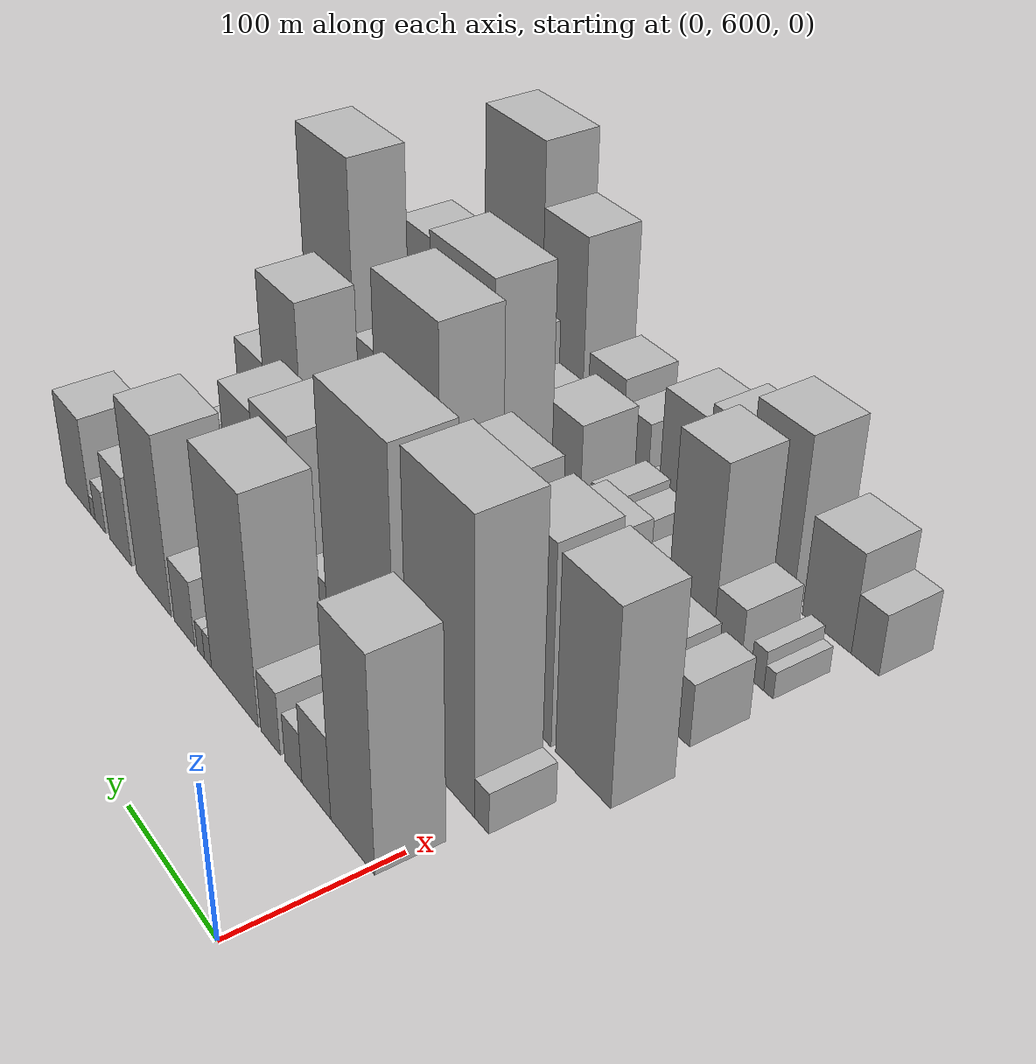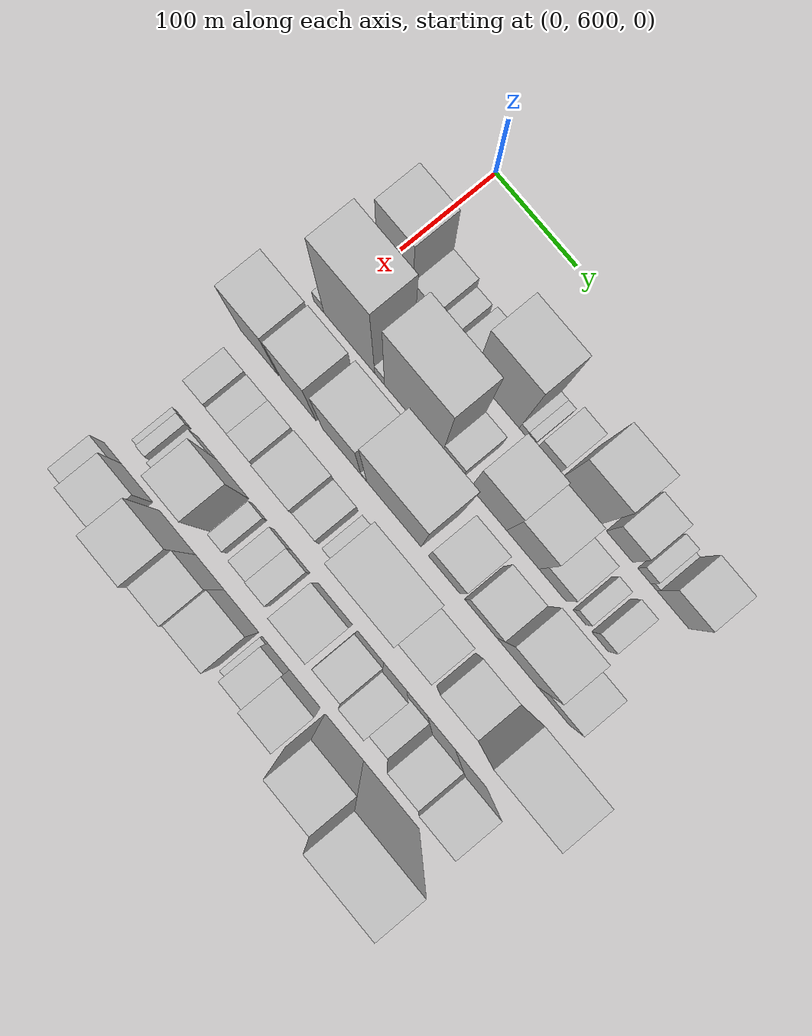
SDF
<sdf version="1.6">
 <world name="default">
  <model name="building_38">
   <static>1</static>
   <pose>100.0000 616.6211 0 0.000000 0.000000 0.000000</pose>
   <link name="link">
    <pose>0 0 69.00 0 0 0</pose>
    <collision name="collision"><geometry><box><size>40.0000 42.8298 138.0000</size></box></geometry></collision>
    <visual name="visual">
     <cast_shadows>0</cast_shadows>
     <geometry><box><size>40.0000 42.8298 138.0000</size></box></geometry>
     <material>
      <script>
       <uri>model://HANNAS_wall/materials/scripts</uri>
       <uri>model://HANNAS_wall/materials/textures</uri>
       <name>vrc/HANNAS_wall</name>
      </script>
     </material>
    </visual>
   </link>
  </model>
  <model name="building_39">
   <static>1</static>
   <pose>100.0000 652.9359 0 0.000000 0.000000 0.000000</pose>
   <link name="link">
    <pose>0 0 27.00 0 0 0</pose>
    <collision name="collision"><geometry><box><size>40.0000 29.7998 54.0000</size></box></geometry></collision>
    <visual name="visual">
     <cast_shadows>0</cast_shadows>
     <geometry><box><size>40.0000 29.7998 54.0000</size></box></geometry>
     <material>
      <script>
       <uri>model://HANNAS_wall/materials/scripts</uri>
       <uri>model://HANNAS_wall/materials/textures</uri>
       <name>vrc/HANNAS_wall</name>
      </script>
     </material>
    </visual>
   </link>
  </model>
  <model name="building_40">
   <static>1</static>
   <pose>100.0000 677.0272 0 0.000000 0.000000 0.000000</pose>
   <link name="link">
    <pose>0 0 16.50 0 0 0</pose>
    <collision name="collision"><geometry><box><size>40.0000 18.3829 33.0000</size></box></geometry></collision>
    <visual name="visual">
     <cast_shadows>0</cast_shadows>
     <geometry><box><size>40.0000 18.3829 33.0000</size></box></geometry>
     <material>
      <script>
       <uri>model://HANNAS_wall/materials/scripts</uri>
       <uri>model://HANNAS_wall/materials/textures</uri>
       <name>vrc/HANNAS_wall</name>
      </script>
     </material>
    </visual>
   </link>
  </model>
  <model name="building_41">
   <static>1</static>
   <pose>100.0000 701.9941 0 0.000000 0.000000 0.000000</pose>
   <link name="link">
    <pose>0 0 21.00 0 0 0</pose>
    <collision name="collision"><geometry><box><size>40.0000 21.5510 42.0000</size></box></geometry></collision>
    <visual name="visual">
     <cast_shadows>0</cast_shadows>
     <geometry><box><size>40.0000 21.5510 42.0000</size></box></geometry>
     <material>
      <script>
       <uri>model://HANNAS_wall/materials/scripts</uri>
       <uri>model://HANNAS_wall/materials/textures</uri>
       <name>vrc/HANNAS_wall</name>
      </script>
     </material>
    </visual>
   </link>
  </model>
  <model name="building_42">
   <static>1</static>
   <pose>100.0000 743.3868 0 0.000000 0.000000 0.000000</pose>
   <link name="link">
    <pose>0 0 75.00 0 0 0</pose>
    <collision name="collision"><geometry><box><size>40.0000 55.2344 150.0000</size></box></geometry></collision>
    <visual name="visual">
     <cast_shadows>0</cast_shadows>
     <geometry><box><size>40.0000 55.2344 150.0000</size></box></geometry>
     <material>
      <script>
       <uri>model://HANNAS_wall/materials/scripts</uri>
       <uri>model://HANNAS_wall/materials/textures</uri>
       <name>vrc/HANNAS_wall</name>
      </script>
     </material>
    </visual>
   </link>
  </model>
  <model name="building_43">
   <static>1</static>
   <pose>100.0000 775.3153 0 0.000000 0.000000 0.000000</pose>
   <link name="link">
    <pose>0 0 10.50 0 0 0</pose>
    <collision name="collision"><geometry><box><size>40.0000 8.6226 21.0000</size></box></geometry></collision>
    <visual name="visual">
     <cast_shadows>0</cast_shadows>
     <geometry><box><size>40.0000 8.6226 21.0000</size></box></geometry>
     <material>
      <script>
       <uri>model://HANNAS_wall/materials/scripts</uri>
       <uri>model://HANNAS_wall/materials/textures</uri>
       <name>vrc/HANNAS_wall</name>
      </script>
     </material>
    </visual>
   </link>
  </model>
  <model name="building_44">
   <static>1</static>
   <pose>100.0000 784.2607 0 0.000000 0.000000 0.000000</pose>
   <link name="link">
    <pose>0 0 10.50 0 0 0</pose>
    <collision name="collision"><geometry><box><size>40.0000 9.2683 21.0000</size></box></geometry></collision>
    <visual name="visual">
     <cast_shadows>0</cast_shadows>
     <geometry><box><size>40.0000 9.2683 21.0000</size></box></geometry>
     <material>
      <script>
       <uri>model://HANNAS_wall/materials/scripts</uri>
       <uri>model://HANNAS_wall/materials/textures</uri>
       <name>vrc/HANNAS_wall</name>
      </script>
     </material>
    </visual>
   </link>
  </model>
  <model name="building_45">
   <static>1</static>
   <pose>100.0000 805.1872 0 0.000000 0.000000 0.000000</pose>
   <link name="link">
    <pose>0 0 22.50 0 0 0</pose>
    <collision name="collision"><geometry><box><size>40.0000 26.5847 45.0000</size></box></geometry></collision>
    <visual name="visual">
     <cast_shadows>0</cast_shadows>
     <geometry><box><size>40.0000 26.5847 45.0000</size></box></geometry>
     <material>
      <script>
       <uri>model://HANNAS_wall/materials/scripts</uri>
       <uri>model://HANNAS_wall/materials/textures</uri>
       <name>vrc/HANNAS_wall</name>
      </script>
     </material>
    </visual>
   </link>
  </model>
  <model name="building_46">
   <static>1</static>
   <pose>100.0000 846.1858 0 0.000000 0.000000 0.000000</pose>
   <link name="link">
    <pose>0 0 61.50 0 0 0</pose>
    <collision name="collision"><geometry><box><size>40.0000 47.4124 123.0000</size></box></geometry></collision>
    <visual name="visual">
     <cast_shadows>0</cast_shadows>
     <geometry><box><size>40.0000 47.4124 123.0000</size></box></geometry>
     <material>
      <script>
       <uri>model://HANNAS_wall/materials/scripts</uri>
       <uri>model://HANNAS_wall/materials/textures</uri>
       <name>vrc/HANNAS_wall</name>
      </script>
     </material>
    </visual>
   </link>
  </model>
  <model name="building_47">
   <static>1</static>
   <pose>100.0000 892.8496 0 0.000000 0.000000 0.000000</pose>
   <link name="link">
    <pose>0 0 31.50 0 0 0</pose>
    <collision name="collision"><geometry><box><size>40.0000 31.9152 63.0000</size></box></geometry></collision>
    <visual name="visual">
     <cast_shadows>0</cast_shadows>
     <geometry><box><size>40.0000 31.9152 63.0000</size></box></geometry>
     <material>
      <script>
       <uri>model://HANNAS_wall/materials/scripts</uri>
       <uri>model://HANNAS_wall/materials/textures</uri>
       <name>vrc/HANNAS_wall</name>
      </script>
     </material>
    </visual>
   </link>
  </model>
  <model name="building_48">
   <static>1</static>
   <pose>100.0000 922.6439 0 0.000000 0.000000 0.000000</pose>
   <link name="link">
    <pose>0 0 15.00 0 0 0</pose>
    <collision name="collision"><geometry><box><size>40.0000 15.6733 30.0000</size></box></geometry></collision>
    <visual name="visual">
     <cast_shadows>0</cast_shadows>
     <geometry><box><size>40.0000 15.6733 30.0000</size></box></geometry>
     <material>
      <script>
       <uri>model://HANNAS_wall/materials/scripts</uri>
       <uri>model://HANNAS_wall/materials/textures</uri>
       <name>vrc/HANNAS_wall</name>
      </script>
     </material>
    </visual>
   </link>
  </model>
  <model name="building_49">
   <static>1</static>
   <pose>100.0000 933.8563 0 0.000000 0.000000 0.000000</pose>
   <link name="link">
    <pose>0 0 7.50 0 0 0</pose>
    <collision name="collision"><geometry><box><size>40.0000 6.7515 15.0000</size></box></geometry></collision>
    <visual name="visual">
     <cast_shadows>0</cast_shadows>
     <geometry><box><size>40.0000 6.7515 15.0000</size></box></geometry>
     <material>
      <script>
       <uri>model://HANNAS_wall/materials/scripts</uri>
       <uri>model://HANNAS_wall/materials/textures</uri>
       <name>vrc/HANNAS_wall</name>
      </script>
     </material>
    </visual>
   </link>
  </model>
  <model name="building_50">
   <static>1</static>
   <pose>100.0000 956.7303 0 0.000000 0.000000 0.000000</pose>
   <link name="link">
    <pose>0 0 34.50 0 0 0</pose>
    <collision name="collision"><geometry><box><size>40.0000 38.9966 69.0000</size></box></geometry></collision>
    <visual name="visual">
     <cast_shadows>0</cast_shadows>
     <geometry><box><size>40.0000 38.9966 69.0000</size></box></geometry>
     <material>
      <script>
       <uri>model://HANNAS_wall/materials/scripts</uri>
       <uri>model://HANNAS_wall/materials/textures</uri>
       <name>vrc/HANNAS_wall</name>
      </script>
     </material>
    </visual>
   </link>
  </model>
  <model name="building_95">
   <static>1</static>
   <pose>160.0000 594.1656 0 0.000000 0.000000 0.000000</pose>
   <link name="link">
    <pose>0 0 13.50 0 0 0</pose>
    <collision name="collision"><geometry><box><size>40.0000 12.6954 27.0000</size></box></geometry></collision>
    <visual name="visual">
     <cast_shadows>0</cast_shadows>
     <geometry><box><size>40.0000 12.6954 27.0000</size></box></geometry>
     <material>
      <script>
       <uri>model://HANNAS_wall/materials/scripts</uri>
       <uri>model://HANNAS_wall/materials/textures</uri>
       <name>vrc/HANNAS_wall</name>
      </script>
     </material>
    </visual>
   </link>
  </model>
  <model name="building_96">
   <static>1</static>
   <pose>160.0000 632.3038 0 0.000000 0.000000 0.000000</pose>
   <link name="link">
    <pose>0 0 93.00 0 0 0</pose>
    <collision name="collision"><geometry><box><size>40.0000 63.5811 186.0000</size></box></geometry></collision>
    <visual name="visual">
     <cast_shadows>0</cast_shadows>
     <geometry><box><size>40.0000 63.5811 186.0000</size></box></geometry>
     <material>
      <script>
       <uri>model://HANNAS_wall/materials/scripts</uri>
       <uri>model://HANNAS_wall/materials/textures</uri>
       <name>vrc/HANNAS_wall</name>
      </script>
     </material>
    </visual>
   </link>
  </model>
  <model name="building_97">
   <static>1</static>
   <pose>160.0000 670.1409 0 0.000000 0.000000 0.000000</pose>
   <link name="link">
    <pose>0 0 13.50 0 0 0</pose>
    <collision name="collision"><geometry><box><size>40.0000 12.0930 27.0000</size></box></geometry></collision>
    <visual name="visual">
     <cast_shadows>0</cast_shadows>
     <geometry><box><size>40.0000 12.0930 27.0000</size></box></geometry>
     <material>
      <script>
       <uri>model://HANNAS_wall/materials/scripts</uri>
       <uri>model://HANNAS_wall/materials/textures</uri>
       <name>vrc/HANNAS_wall</name>
      </script>
     </material>
    </visual>
   </link>
  </model>
  <model name="building_98">
   <static>1</static>
   <pose>160.0000 711.9263 0 0.000000 0.000000 0.000000</pose>
   <link name="link">
    <pose>0 0 90.00 0 0 0</pose>
    <collision name="collision"><geometry><box><size>40.0000 71.4777 180.0000</size></box></geometry></collision>
    <visual name="visual">
     <cast_shadows>0</cast_shadows>
     <geometry><box><size>40.0000 71.4777 180.0000</size></box></geometry>
     <material>
      <script>
       <uri>model://HANNAS_wall/materials/scripts</uri>
       <uri>model://HANNAS_wall/materials/textures</uri>
       <name>vrc/HANNAS_wall</name>
      </script>
     </material>
    </visual>
   </link>
  </model>
  <model name="building_99">
   <static>1</static>
   <pose>160.0000 760.1207 0 0.000000 0.000000 0.000000</pose>
   <link name="link">
    <pose>0 0 24.00 0 0 0</pose>
    <collision name="collision"><geometry><box><size>40.0000 24.9111 48.0000</size></box></geometry></collision>
    <visual name="visual">
     <cast_shadows>0</cast_shadows>
     <geometry><box><size>40.0000 24.9111 48.0000</size></box></geometry>
     <material>
      <script>
       <uri>model://HANNAS_wall/materials/scripts</uri>
       <uri>model://HANNAS_wall/materials/textures</uri>
       <name>vrc/HANNAS_wall</name>
      </script>
     </material>
    </visual>
   </link>
  </model>
  <model name="building_100">
   <static>1</static>
   <pose>160.0000 804.5762 0 0.000000 0.000000 0.000000</pose>
   <link name="link">
    <pose>0 0 61.50 0 0 0</pose>
    <collision name="collision"><geometry><box><size>40.0000 43.9998 123.0000</size></box></geometry></collision>
    <visual name="visual">
     <cast_shadows>0</cast_shadows>
     <geometry><box><size>40.0000 43.9998 123.0000</size></box></geometry>
     <material>
      <script>
       <uri>model://HANNAS_wall/materials/scripts</uri>
       <uri>model://HANNAS_wall/materials/textures</uri>
       <name>vrc/HANNAS_wall</name>
      </script>
     </material>
    </visual>
   </link>
  </model>
  <model name="building_101">
   <static>1</static>
   <pose>160.0000 846.2046 0 0.000000 0.000000 0.000000</pose>
   <link name="link">
    <pose>0 0 57.00 0 0 0</pose>
    <collision name="collision"><geometry><box><size>40.0000 39.2571 114.0000</size></box></geometry></collision>
    <visual name="visual">
     <cast_shadows>0</cast_shadows>
     <geometry><box><size>40.0000 39.2571 114.0000</size></box></geometry>
     <material>
      <script>
       <uri>model://HANNAS_wall/materials/scripts</uri>
       <uri>model://HANNAS_wall/materials/textures</uri>
       <name>vrc/HANNAS_wall</name>
      </script>
     </material>
    </visual>
   </link>
  </model>
  <model name="building_102">
   <static>1</static>
   <pose>160.0000 881.9587 0 0.000000 0.000000 0.000000</pose>
   <link name="link">
    <pose>0 0 28.50 0 0 0</pose>
    <collision name="collision"><geometry><box><size>40.0000 32.2511 57.0000</size></box></geometry></collision>
    <visual name="visual">
     <cast_shadows>0</cast_shadows>
     <geometry><box><size>40.0000 32.2511 57.0000</size></box></geometry>
     <material>
      <script>
       <uri>model://HANNAS_wall/materials/scripts</uri>
       <uri>model://HANNAS_wall/materials/textures</uri>
       <name>vrc/HANNAS_wall</name>
      </script>
     </material>
    </visual>
   </link>
  </model>
  <model name="building_103">
   <static>1</static>
   <pose>160.0000 914.7611 0 0.000000 0.000000 0.000000</pose>
   <link name="link">
    <pose>0 0 15.00 0 0 0</pose>
    <collision name="collision"><geometry><box><size>40.0000 15.3538 30.0000</size></box></geometry></collision>
    <visual name="visual">
     <cast_shadows>0</cast_shadows>
     <geometry><box><size>40.0000 15.3538 30.0000</size></box></geometry>
     <material>
      <script>
       <uri>model://HANNAS_wall/materials/scripts</uri>
       <uri>model://HANNAS_wall/materials/textures</uri>
       <name>vrc/HANNAS_wall</name>
      </script>
     </material>
    </visual>
   </link>
  </model>
  <model name="building_104">
   <static>1</static>
   <pose>160.0000 939.2366 0 0.000000 0.000000 0.000000</pose>
   <link name="link">
    <pose>0 0 19.50 0 0 0</pose>
    <collision name="collision"><geometry><box><size>40.0000 19.5971 39.0000</size></box></geometry></collision>
    <visual name="visual">
     <cast_shadows>0</cast_shadows>
     <geometry><box><size>40.0000 19.5971 39.0000</size></box></geometry>
     <material>
      <script>
       <uri>model://HANNAS_wall/materials/scripts</uri>
       <uri>model://HANNAS_wall/materials/textures</uri>
       <name>vrc/HANNAS_wall</name>
      </script>
     </material>
    </visual>
   </link>
  </model>
  <model name="building_153">
   <static>1</static>
   <pose>220.0000 593.1512 0 0.000000 0.000000 0.000000</pose>
   <link name="link">
    <pose>0 0 64.50 0 0 0</pose>
    <collision name="collision"><geometry><box><size>40.0000 47.6746 129.0000</size></box></geometry></collision>
    <visual name="visual">
     <cast_shadows>0</cast_shadows>
     <geometry><box><size>40.0000 47.6746 129.0000</size></box></geometry>
     <material>
      <script>
       <uri>model://HANNAS_wall/materials/scripts</uri>
       <uri>model://HANNAS_wall/materials/textures</uri>
       <name>vrc/HANNAS_wall</name>
      </script>
     </material>
    </visual>
   </link>
  </model>
  <model name="building_154">
   <static>1</static>
   <pose>220.0000 642.4220 0 0.000000 0.000000 0.000000</pose>
   <link name="link">
    <pose>0 0 66.00 0 0 0</pose>
    <collision name="collision"><geometry><box><size>40.0000 42.8670 132.0000</size></box></geometry></collision>
    <visual name="visual">
     <cast_shadows>0</cast_shadows>
     <geometry><box><size>40.0000 42.8670 132.0000</size></box></geometry>
     <material>
      <script>
       <uri>model://HANNAS_wall/materials/scripts</uri>
       <uri>model://HANNAS_wall/materials/textures</uri>
       <name>vrc/HANNAS_wall</name>
      </script>
     </material>
    </visual>
   </link>
  </model>
  <model name="building_155">
   <static>1</static>
   <pose>220.0000 695.8045 0 0.000000 0.000000 0.000000</pose>
   <link name="link">
    <pose>0 0 69.00 0 0 0</pose>
    <collision name="collision"><geometry><box><size>40.0000 47.8979 138.0000</size></box></geometry></collision>
    <visual name="visual">
     <cast_shadows>0</cast_shadows>
     <geometry><box><size>40.0000 47.8979 138.0000</size></box></geometry>
     <material>
      <script>
       <uri>model://HANNAS_wall/materials/scripts</uri>
       <uri>model://HANNAS_wall/materials/textures</uri>
       <name>vrc/HANNAS_wall</name>
      </script>
     </material>
    </visual>
   </link>
  </model>
  <model name="building_156">
   <static>1</static>
   <pose>220.0000 723.2769 0 0.000000 0.000000 0.000000</pose>
   <link name="link">
    <pose>0 0 7.50 0 0 0</pose>
    <collision name="collision"><geometry><box><size>40.0000 7.0471 15.0000</size></box></geometry></collision>
    <visual name="visual">
     <cast_shadows>0</cast_shadows>
     <geometry><box><size>40.0000 7.0471 15.0000</size></box></geometry>
     <material>
      <script>
       <uri>model://HANNAS_wall/materials/scripts</uri>
       <uri>model://HANNAS_wall/materials/textures</uri>
       <name>vrc/HANNAS_wall</name>
      </script>
     </material>
    </visual>
   </link>
  </model>
  <model name="building_157">
   <static>1</static>
   <pose>220.0000 760.1684 0 0.000000 0.000000 0.000000</pose>
   <link name="link">
    <pose>0 0 100.50 0 0 0</pose>
    <collision name="collision"><geometry><box><size>40.0000 66.7359 201.0000</size></box></geometry></collision>
    <visual name="visual">
     <cast_shadows>0</cast_shadows>
     <geometry><box><size>40.0000 66.7359 201.0000</size></box></geometry>
     <material>
      <script>
       <uri>model://HANNAS_wall/materials/scripts</uri>
       <uri>model://HANNAS_wall/materials/textures</uri>
       <name>vrc/HANNAS_wall</name>
      </script>
     </material>
    </visual>
   </link>
  </model>
  <model name="building_158">
   <static>1</static>
   <pose>220.0000 821.5343 0 0.000000 0.000000 0.000000</pose>
   <link name="link">
    <pose>0 0 48.00 0 0 0</pose>
    <collision name="collision"><geometry><box><size>40.0000 37.9960 96.0000</size></box></geometry></collision>
    <visual name="visual">
     <cast_shadows>0</cast_shadows>
     <geometry><box><size>40.0000 37.9960 96.0000</size></box></geometry>
     <material>
      <script>
       <uri>model://HANNAS_wall/materials/scripts</uri>
       <uri>model://HANNAS_wall/materials/textures</uri>
       <name>vrc/HANNAS_wall</name>
      </script>
     </material>
    </visual>
   </link>
  </model>
  <model name="building_159">
   <static>1</static>
   <pose>220.0000 866.0083 0 0.000000 0.000000 0.000000</pose>
   <link name="link">
    <pose>0 0 34.50 0 0 0</pose>
    <collision name="collision"><geometry><box><size>40.0000 38.9519 69.0000</size></box></geometry></collision>
    <visual name="visual">
     <cast_shadows>0</cast_shadows>
     <geometry><box><size>40.0000 38.9519 69.0000</size></box></geometry>
     <material>
      <script>
       <uri>model://HANNAS_wall/materials/scripts</uri>
       <uri>model://HANNAS_wall/materials/textures</uri>
       <name>vrc/HANNAS_wall</name>
      </script>
     </material>
    </visual>
   </link>
  </model>
  <model name="building_160">
   <static>1</static>
   <pose>220.0000 909.9319 0 0.000000 0.000000 0.000000</pose>
   <link name="link">
    <pose>0 0 67.50 0 0 0</pose>
    <collision name="collision"><geometry><box><size>40.0000 48.8955 135.0000</size></box></geometry></collision>
    <visual name="visual">
     <cast_shadows>0</cast_shadows>
     <geometry><box><size>40.0000 48.8955 135.0000</size></box></geometry>
     <material>
      <script>
       <uri>model://HANNAS_wall/materials/scripts</uri>
       <uri>model://HANNAS_wall/materials/textures</uri>
       <name>vrc/HANNAS_wall</name>
      </script>
     </material>
    </visual>
   </link>
  </model>
  <model name="building_161">
   <static>1</static>
   <pose>220.0000 953.6380 0 0.000000 0.000000 0.000000</pose>
   <link name="link">
    <pose>0 0 34.50 0 0 0</pose>
    <collision name="collision"><geometry><box><size>40.0000 38.5166 69.0000</size></box></geometry></collision>
    <visual name="visual">
     <cast_shadows>0</cast_shadows>
     <geometry><box><size>40.0000 38.5166 69.0000</size></box></geometry>
     <material>
      <script>
       <uri>model://HANNAS_wall/materials/scripts</uri>
       <uri>model://HANNAS_wall/materials/textures</uri>
       <name>vrc/HANNAS_wall</name>
      </script>
     </material>
    </visual>
   </link>
  </model>
  <model name="building_206">
   <static>1</static>
   <pose>280.0000 594.3419 0 0.000000 0.000000 0.000000</pose>
   <link name="link">
    <pose>0 0 21.00 0 0 0</pose>
    <collision name="collision"><geometry><box><size>40.0000 24.1091 42.0000</size></box></geometry></collision>
    <visual name="visual">
     <cast_shadows>0</cast_shadows>
     <geometry><box><size>40.0000 24.1091 42.0000</size></box></geometry>
     <material>
      <script>
       <uri>model://HANNAS_wall/materials/scripts</uri>
       <uri>model://HANNAS_wall/materials/textures</uri>
       <name>vrc/HANNAS_wall</name>
      </script>
     </material>
    </visual>
   </link>
  </model>
  <model name="building_207">
   <static>1</static>
   <pose>280.0000 623.6941 0 0.000000 0.000000 0.000000</pose>
   <link name="link">
    <pose>0 0 22.50 0 0 0</pose>
    <collision name="collision"><geometry><box><size>40.0000 26.5952 45.0000</size></box></geometry></collision>
    <visual name="visual">
     <cast_shadows>0</cast_shadows>
     <geometry><box><size>40.0000 26.5952 45.0000</size></box></geometry>
     <material>
      <script>
       <uri>model://HANNAS_wall/materials/scripts</uri>
       <uri>model://HANNAS_wall/materials/textures</uri>
       <name>vrc/HANNAS_wall</name>
      </script>
     </material>
    </visual>
   </link>
  </model>
  <model name="building_208">
   <static>1</static>
   <pose>280.0000 650.5038 0 0.000000 0.000000 0.000000</pose>
   <link name="link">
    <pose>0 0 25.50 0 0 0</pose>
    <collision name="collision"><geometry><box><size>40.0000 27.0244 51.0000</size></box></geometry></collision>
    <visual name="visual">
     <cast_shadows>0</cast_shadows>
     <geometry><box><size>40.0000 27.0244 51.0000</size></box></geometry>
     <material>
      <script>
       <uri>model://HANNAS_wall/materials/scripts</uri>
       <uri>model://HANNAS_wall/materials/textures</uri>
       <name>vrc/HANNAS_wall</name>
      </script>
     </material>
    </visual>
   </link>
  </model>
  <model name="building_209">
   <static>1</static>
   <pose>280.0000 692.4251 0 0.000000 0.000000 0.000000</pose>
   <link name="link">
    <pose>0 0 37.50 0 0 0</pose>
    <collision name="collision"><geometry><box><size>40.0000 42.8182 75.0000</size></box></geometry></collision>
    <visual name="visual">
     <cast_shadows>0</cast_shadows>
     <geometry><box><size>40.0000 42.8182 75.0000</size></box></geometry>
     <material>
      <script>
       <uri>model://HANNAS_wall/materials/scripts</uri>
       <uri>model://HANNAS_wall/materials/textures</uri>
       <name>vrc/HANNAS_wall</name>
      </script>
     </material>
    </visual>
   </link>
  </model>
  <model name="building_210">
   <static>1</static>
   <pose>280.0000 727.2226 0 0.000000 0.000000 0.000000</pose>
   <link name="link">
    <pose>0 0 24.00 0 0 0</pose>
    <collision name="collision"><geometry><box><size>40.0000 26.7766 48.0000</size></box></geometry></collision>
    <visual name="visual">
     <cast_shadows>0</cast_shadows>
     <geometry><box><size>40.0000 26.7766 48.0000</size></box></geometry>
     <material>
      <script>
       <uri>model://HANNAS_wall/materials/scripts</uri>
       <uri>model://HANNAS_wall/materials/textures</uri>
       <name>vrc/HANNAS_wall</name>
      </script>
     </material>
    </visual>
   </link>
  </model>
  <model name="building_211">
   <static>1</static>
   <pose>280.0000 753.2956 0 0.000000 0.000000 0.000000</pose>
   <link name="link">
    <pose>0 0 13.50 0 0 0</pose>
    <collision name="collision"><geometry><box><size>40.0000 13.3695 27.0000</size></box></geometry></collision>
    <visual name="visual">
     <cast_shadows>0</cast_shadows>
     <geometry><box><size>40.0000 13.3695 27.0000</size></box></geometry>
     <material>
      <script>
       <uri>model://HANNAS_wall/materials/scripts</uri>
       <uri>model://HANNAS_wall/materials/textures</uri>
       <name>vrc/HANNAS_wall</name>
      </script>
     </material>
    </visual>
   </link>
  </model>
  <model name="building_212">
   <static>1</static>
   <pose>280.0000 799.2630 0 0.000000 0.000000 0.000000</pose>
   <link name="link">
    <pose>0 0 94.50 0 0 0</pose>
    <collision name="collision"><geometry><box><size>40.0000 66.5652 189.0000</size></box></geometry></collision>
    <visual name="visual">
     <cast_shadows>0</cast_shadows>
     <geometry><box><size>40.0000 66.5652 189.0000</size></box></geometry>
     <material>
      <script>
       <uri>model://HANNAS_wall/materials/scripts</uri>
       <uri>model://HANNAS_wall/materials/textures</uri>
       <name>vrc/HANNAS_wall</name>
      </script>
     </material>
    </visual>
   </link>
  </model>
  <model name="building_213">
   <static>1</static>
   <pose>280.0000 853.3339 0 0.000000 0.000000 0.000000</pose>
   <link name="link">
    <pose>0 0 40.50 0 0 0</pose>
    <collision name="collision"><geometry><box><size>40.0000 41.5766 81.0000</size></box></geometry></collision>
    <visual name="visual">
     <cast_shadows>0</cast_shadows>
     <geometry><box><size>40.0000 41.5766 81.0000</size></box></geometry>
     <material>
      <script>
       <uri>model://HANNAS_wall/materials/scripts</uri>
       <uri>model://HANNAS_wall/materials/textures</uri>
       <name>vrc/HANNAS_wall</name>
      </script>
     </material>
    </visual>
   </link>
  </model>
  <model name="building_214">
   <static>1</static>
   <pose>280.0000 904.9414 0 0.000000 0.000000 0.000000</pose>
   <link name="link">
    <pose>0 0 37.50 0 0 0</pose>
    <collision name="collision"><geometry><box><size>40.0000 41.6384 75.0000</size></box></geometry></collision>
    <visual name="visual">
     <cast_shadows>0</cast_shadows>
     <geometry><box><size>40.0000 41.6384 75.0000</size></box></geometry>
     <material>
      <script>
       <uri>model://HANNAS_wall/materials/scripts</uri>
       <uri>model://HANNAS_wall/materials/textures</uri>
       <name>vrc/HANNAS_wall</name>
      </script>
     </material>
    </visual>
   </link>
  </model>
  <model name="building_215">
   <static>1</static>
   <pose>280.0000 957.4495 0 0.000000 0.000000 0.000000</pose>
   <link name="link">
    <pose>0 0 97.50 0 0 0</pose>
    <collision name="collision"><geometry><box><size>40.0000 63.3779 195.0000</size></box></geometry></collision>
    <visual name="visual">
     <cast_shadows>0</cast_shadows>
     <geometry><box><size>40.0000 63.3779 195.0000</size></box></geometry>
     <material>
      <script>
       <uri>model://HANNAS_wall/materials/scripts</uri>
       <uri>model://HANNAS_wall/materials/textures</uri>
       <name>vrc/HANNAS_wall</name>
      </script>
     </material>
    </visual>
   </link>
  </model>
  <model name="building_261">
   <static>1</static>
   <pose>340.0000 590.6284 0 0.000000 0.000000 0.000000</pose>
   <link name="link">
    <pose>0 0 9.00 0 0 0</pose>
    <collision name="collision"><geometry><box><size>40.0000 7.7369 18.0000</size></box></geometry></collision>
    <visual name="visual">
     <cast_shadows>0</cast_shadows>
     <geometry><box><size>40.0000 7.7369 18.0000</size></box></geometry>
     <material>
      <script>
       <uri>model://HANNAS_wall/materials/scripts</uri>
       <uri>model://HANNAS_wall/materials/textures</uri>
       <name>vrc/HANNAS_wall</name>
      </script>
     </material>
    </visual>
   </link>
  </model>
  <model name="building_262">
   <static>1</static>
   <pose>340.0000 600.0685 0 0.000000 0.000000 0.000000</pose>
   <link name="link">
    <pose>0 0 13.50 0 0 0</pose>
    <collision name="collision"><geometry><box><size>40.0000 11.1434 27.0000</size></box></geometry></collision>
    <visual name="visual">
     <cast_shadows>0</cast_shadows>
     <geometry><box><size>40.0000 11.1434 27.0000</size></box></geometry>
     <material>
      <script>
       <uri>model://HANNAS_wall/materials/scripts</uri>
       <uri>model://HANNAS_wall/materials/textures</uri>
       <name>vrc/HANNAS_wall</name>
      </script>
     </material>
    </visual>
   </link>
  </model>
  <model name="building_263">
   <static>1</static>
   <pose>340.0000 625.5204 0 0.000000 0.000000 0.000000</pose>
   <link name="link">
    <pose>0 0 21.00 0 0 0</pose>
    <collision name="collision"><geometry><box><size>40.0000 23.7603 42.0000</size></box></geometry></collision>
    <visual name="visual">
     <cast_shadows>0</cast_shadows>
     <geometry><box><size>40.0000 23.7603 42.0000</size></box></geometry>
     <material>
      <script>
       <uri>model://HANNAS_wall/materials/scripts</uri>
       <uri>model://HANNAS_wall/materials/textures</uri>
       <name>vrc/HANNAS_wall</name>
      </script>
     </material>
    </visual>
   </link>
  </model>
  <model name="building_264">
   <static>1</static>
   <pose>340.0000 657.7177 0 0.000000 0.000000 0.000000</pose>
   <link name="link">
    <pose>0 0 61.50 0 0 0</pose>
    <collision name="collision"><geometry><box><size>40.0000 40.6342 123.0000</size></box></geometry></collision>
    <visual name="visual">
     <cast_shadows>0</cast_shadows>
     <geometry><box><size>40.0000 40.6342 123.0000</size></box></geometry>
     <material>
      <script>
       <uri>model://HANNAS_wall/materials/scripts</uri>
       <uri>model://HANNAS_wall/materials/textures</uri>
       <name>vrc/HANNAS_wall</name>
      </script>
     </material>
    </visual>
   </link>
  </model>
  <model name="building_265">
   <static>1</static>
   <pose>340.0000 691.6384 0 0.000000 0.000000 0.000000</pose>
   <link name="link">
    <pose>0 0 15.00 0 0 0</pose>
    <collision name="collision"><geometry><box><size>40.0000 17.2072 30.0000</size></box></geometry></collision>
    <visual name="visual">
     <cast_shadows>0</cast_shadows>
     <geometry><box><size>40.0000 17.2072 30.0000</size></box></geometry>
     <material>
      <script>
       <uri>model://HANNAS_wall/materials/scripts</uri>
       <uri>model://HANNAS_wall/materials/textures</uri>
       <name>vrc/HANNAS_wall</name>
      </script>
     </material>
    </visual>
   </link>
  </model>
  <model name="building_266">
   <static>1</static>
   <pose>340.0000 719.7882 0 0.000000 0.000000 0.000000</pose>
   <link name="link">
    <pose>0 0 18.00 0 0 0</pose>
    <collision name="collision"><geometry><box><size>40.0000 21.0924 36.0000</size></box></geometry></collision>
    <visual name="visual">
     <cast_shadows>0</cast_shadows>
     <geometry><box><size>40.0000 21.0924 36.0000</size></box></geometry>
     <material>
      <script>
       <uri>model://HANNAS_wall/materials/scripts</uri>
       <uri>model://HANNAS_wall/materials/textures</uri>
       <name>vrc/HANNAS_wall</name>
      </script>
     </material>
    </visual>
   </link>
  </model>
  <model name="building_267">
   <static>1</static>
   <pose>340.0000 742.0023 0 0.000000 0.000000 0.000000</pose>
   <link name="link">
    <pose>0 0 21.00 0 0 0</pose>
    <collision name="collision"><geometry><box><size>40.0000 23.3359 42.0000</size></box></geometry></collision>
    <visual name="visual">
     <cast_shadows>0</cast_shadows>
     <geometry><box><size>40.0000 23.3359 42.0000</size></box></geometry>
     <material>
      <script>
       <uri>model://HANNAS_wall/materials/scripts</uri>
       <uri>model://HANNAS_wall/materials/textures</uri>
       <name>vrc/HANNAS_wall</name>
      </script>
     </material>
    </visual>
   </link>
  </model>
  <model name="building_268">
   <static>1</static>
   <pose>340.0000 784.8222 0 0.000000 0.000000 0.000000</pose>
   <link name="link">
    <pose>0 0 37.50 0 0 0</pose>
    <collision name="collision"><geometry><box><size>40.0000 42.3038 75.0000</size></box></geometry></collision>
    <visual name="visual">
     <cast_shadows>0</cast_shadows>
     <geometry><box><size>40.0000 42.3038 75.0000</size></box></geometry>
     <material>
      <script>
       <uri>model://HANNAS_wall/materials/scripts</uri>
       <uri>model://HANNAS_wall/materials/textures</uri>
       <name>vrc/HANNAS_wall</name>
      </script>
     </material>
    </visual>
   </link>
  </model>
  <model name="building_269">
   <static>1</static>
   <pose>340.0000 828.0328 0 0.000000 0.000000 0.000000</pose>
   <link name="link">
    <pose>0 0 31.50 0 0 0</pose>
    <collision name="collision"><geometry><box><size>40.0000 32.1175 63.0000</size></box></geometry></collision>
    <visual name="visual">
     <cast_shadows>0</cast_shadows>
     <geometry><box><size>40.0000 32.1175 63.0000</size></box></geometry>
     <material>
      <script>
       <uri>model://HANNAS_wall/materials/scripts</uri>
       <uri>model://HANNAS_wall/materials/textures</uri>
       <name>vrc/HANNAS_wall</name>
      </script>
     </material>
    </visual>
   </link>
  </model>
  <model name="building_270">
   <static>1</static>
   <pose>340.0000 858.1792 0 0.000000 0.000000 0.000000</pose>
   <link name="link">
    <pose>0 0 46.50 0 0 0</pose>
    <collision name="collision"><geometry><box><size>40.0000 28.1753 93.0000</size></box></geometry></collision>
    <visual name="visual">
     <cast_shadows>0</cast_shadows>
     <geometry><box><size>40.0000 28.1753 93.0000</size></box></geometry>
     <material>
      <script>
       <uri>model://HANNAS_wall/materials/scripts</uri>
       <uri>model://HANNAS_wall/materials/textures</uri>
       <name>vrc/HANNAS_wall</name>
      </script>
     </material>
    </visual>
   </link>
  </model>
  <model name="building_271">
   <static>1</static>
   <pose>340.0000 884.9161 0 0.000000 0.000000 0.000000</pose>
   <link name="link">
    <pose>0 0 24.00 0 0 0</pose>
    <collision name="collision"><geometry><box><size>40.0000 25.2984 48.0000</size></box></geometry></collision>
    <visual name="visual">
     <cast_shadows>0</cast_shadows>
     <geometry><box><size>40.0000 25.2984 48.0000</size></box></geometry>
     <material>
      <script>
       <uri>model://HANNAS_wall/materials/scripts</uri>
       <uri>model://HANNAS_wall/materials/textures</uri>
       <name>vrc/HANNAS_wall</name>
      </script>
     </material>
    </visual>
   </link>
  </model>
  <model name="building_272">
   <static>1</static>
   <pose>340.0000 914.1263 0 0.000000 0.000000 0.000000</pose>
   <link name="link">
    <pose>0 0 54.00 0 0 0</pose>
    <collision name="collision"><geometry><box><size>40.0000 33.1221 108.0000</size></box></geometry></collision>
    <visual name="visual">
     <cast_shadows>0</cast_shadows>
     <geometry><box><size>40.0000 33.1221 108.0000</size></box></geometry>
     <material>
      <script>
       <uri>model://HANNAS_wall/materials/scripts</uri>
       <uri>model://HANNAS_wall/materials/textures</uri>
       <name>vrc/HANNAS_wall</name>
      </script>
     </material>
    </visual>
   </link>
  </model>
  <model name="building_273">
   <static>1</static>
   <pose>340.0000 949.5794 0 0.000000 0.000000 0.000000</pose>
   <link name="link">
    <pose>0 0 61.50 0 0 0</pose>
    <collision name="collision"><geometry><box><size>40.0000 37.7840 123.0000</size></box></geometry></collision>
    <visual name="visual">
     <cast_shadows>0</cast_shadows>
     <geometry><box><size>40.0000 37.7840 123.0000</size></box></geometry>
     <material>
      <script>
       <uri>model://HANNAS_wall/materials/scripts</uri>
       <uri>model://HANNAS_wall/materials/textures</uri>
       <name>vrc/HANNAS_wall</name>
      </script>
     </material>
    </visual>
   </link>
  </model>
  <model name="building_317">
   <static>1</static>
   <pose>400.0000 580.5941 0 0.000000 0.000000 0.000000</pose>
   <link name="link">
    <pose>0 0 21.00 0 0 0</pose>
    <collision name="collision"><geometry><box><size>40.0000 21.7797 42.0000</size></box></geometry></collision>
    <visual name="visual">
     <cast_shadows>0</cast_shadows>
     <geometry><box><size>40.0000 21.7797 42.0000</size></box></geometry>
     <material>
      <script>
       <uri>model://HANNAS_wall/materials/scripts</uri>
       <uri>model://HANNAS_wall/materials/textures</uri>
       <name>vrc/HANNAS_wall</name>
      </script>
     </material>
    </visual>
   </link>
  </model>
  <model name="building_318">
   <static>1</static>
   <pose>400.0000 611.5844 0 0.000000 0.000000 0.000000</pose>
   <link name="link">
    <pose>0 0 34.50 0 0 0</pose>
    <collision name="collision"><geometry><box><size>40.0000 40.2010 69.0000</size></box></geometry></collision>
    <visual name="visual">
     <cast_shadows>0</cast_shadows>
     <geometry><box><size>40.0000 40.2010 69.0000</size></box></geometry>
     <material>
      <script>
       <uri>model://HANNAS_wall/materials/scripts</uri>
       <uri>model://HANNAS_wall/materials/textures</uri>
       <name>vrc/HANNAS_wall</name>
      </script>
     </material>
    </visual>
   </link>
  </model>
  <model name="building_319">
   <static>1</static>
   <pose>400.0000 662.3409 0 0.000000 0.000000 0.000000</pose>
   <link name="link">
    <pose>0 0 58.50 0 0 0</pose>
    <collision name="collision"><geometry><box><size>40.0000 45.3120 117.0000</size></box></geometry></collision>
    <visual name="visual">
     <cast_shadows>0</cast_shadows>
     <geometry><box><size>40.0000 45.3120 117.0000</size></box></geometry>
     <material>
      <script>
       <uri>model://HANNAS_wall/materials/scripts</uri>
       <uri>model://HANNAS_wall/materials/textures</uri>
       <name>vrc/HANNAS_wall</name>
      </script>
     </material>
    </visual>
   </link>
  </model>
  <model name="building_320">
   <static>1</static>
   <pose>400.0000 702.8738 0 0.000000 0.000000 0.000000</pose>
   <link name="link">
    <pose>0 0 46.50 0 0 0</pose>
    <collision name="collision"><geometry><box><size>40.0000 35.7539 93.0000</size></box></geometry></collision>
    <visual name="visual">
     <cast_shadows>0</cast_shadows>
     <geometry><box><size>40.0000 35.7539 93.0000</size></box></geometry>
     <material>
      <script>
       <uri>model://HANNAS_wall/materials/scripts</uri>
       <uri>model://HANNAS_wall/materials/textures</uri>
       <name>vrc/HANNAS_wall</name>
      </script>
     </material>
    </visual>
   </link>
  </model>
  <model name="building_321">
   <static>1</static>
   <pose>400.0000 742.3589 0 0.000000 0.000000 0.000000</pose>
   <link name="link">
    <pose>0 0 40.50 0 0 0</pose>
    <collision name="collision"><geometry><box><size>40.0000 43.2163 81.0000</size></box></geometry></collision>
    <visual name="visual">
     <cast_shadows>0</cast_shadows>
     <geometry><box><size>40.0000 43.2163 81.0000</size></box></geometry>
     <material>
      <script>
       <uri>model://HANNAS_wall/materials/scripts</uri>
       <uri>model://HANNAS_wall/materials/textures</uri>
       <name>vrc/HANNAS_wall</name>
      </script>
     </material>
    </visual>
   </link>
  </model>
  <model name="building_322">
   <static>1</static>
   <pose>400.0000 771.4121 0 0.000000 0.000000 0.000000</pose>
   <link name="link">
    <pose>0 0 7.50 0 0 0</pose>
    <collision name="collision"><geometry><box><size>40.0000 6.8901 15.0000</size></box></geometry></collision>
    <visual name="visual">
     <cast_shadows>0</cast_shadows>
     <geometry><box><size>40.0000 6.8901 15.0000</size></box></geometry>
     <material>
      <script>
       <uri>model://HANNAS_wall/materials/scripts</uri>
       <uri>model://HANNAS_wall/materials/textures</uri>
       <name>vrc/HANNAS_wall</name>
      </script>
     </material>
    </visual>
   </link>
  </model>
  <model name="building_323">
   <static>1</static>
   <pose>400.0000 788.2337 0 0.000000 0.000000 0.000000</pose>
   <link name="link">
    <pose>0 0 24.00 0 0 0</pose>
    <collision name="collision"><geometry><box><size>40.0000 26.7532 48.0000</size></box></geometry></collision>
    <visual name="visual">
     <cast_shadows>0</cast_shadows>
     <geometry><box><size>40.0000 26.7532 48.0000</size></box></geometry>
     <material>
      <script>
       <uri>model://HANNAS_wall/materials/scripts</uri>
       <uri>model://HANNAS_wall/materials/textures</uri>
       <name>vrc/HANNAS_wall</name>
      </script>
     </material>
    </visual>
   </link>
  </model>
  <model name="building_324">
   <static>1</static>
   <pose>400.0000 820.4968 0 0.000000 0.000000 0.000000</pose>
   <link name="link">
    <pose>0 0 33.00 0 0 0</pose>
    <collision name="collision"><geometry><box><size>40.0000 37.7729 66.0000</size></box></geometry></collision>
    <visual name="visual">
     <cast_shadows>0</cast_shadows>
     <geometry><box><size>40.0000 37.7729 66.0000</size></box></geometry>
     <material>
      <script>
       <uri>model://HANNAS_wall/materials/scripts</uri>
       <uri>model://HANNAS_wall/materials/textures</uri>
       <name>vrc/HANNAS_wall</name>
      </script>
     </material>
    </visual>
   </link>
  </model>
  <model name="building_325">
   <static>1</static>
   <pose>400.0000 868.6892 0 0.000000 0.000000 0.000000</pose>
   <link name="link">
    <pose>0 0 72.00 0 0 0</pose>
    <collision name="collision"><geometry><box><size>40.0000 46.6119 144.0000</size></box></geometry></collision>
    <visual name="visual">
     <cast_shadows>0</cast_shadows>
     <geometry><box><size>40.0000 46.6119 144.0000</size></box></geometry>
     <material>
      <script>
       <uri>model://HANNAS_wall/materials/scripts</uri>
       <uri>model://HANNAS_wall/materials/textures</uri>
       <name>vrc/HANNAS_wall</name>
      </script>
     </material>
    </visual>
   </link>
  </model>
  <model name="building_326">
   <static>1</static>
   <pose>400.0000 925.6326 0 0.000000 0.000000 0.000000</pose>
   <link name="link">
    <pose>0 0 94.50 0 0 0</pose>
    <collision name="collision"><geometry><box><size>40.0000 67.2748 189.0000</size></box></geometry></collision>
    <visual name="visual">
     <cast_shadows>0</cast_shadows>
     <geometry><box><size>40.0000 67.2748 189.0000</size></box></geometry>
     <material>
      <script>
       <uri>model://HANNAS_wall/materials/scripts</uri>
       <uri>model://HANNAS_wall/materials/textures</uri>
       <name>vrc/HANNAS_wall</name>
      </script>
     </material>
    </visual>
   </link>
  </model>
 </world>
</sdf>
